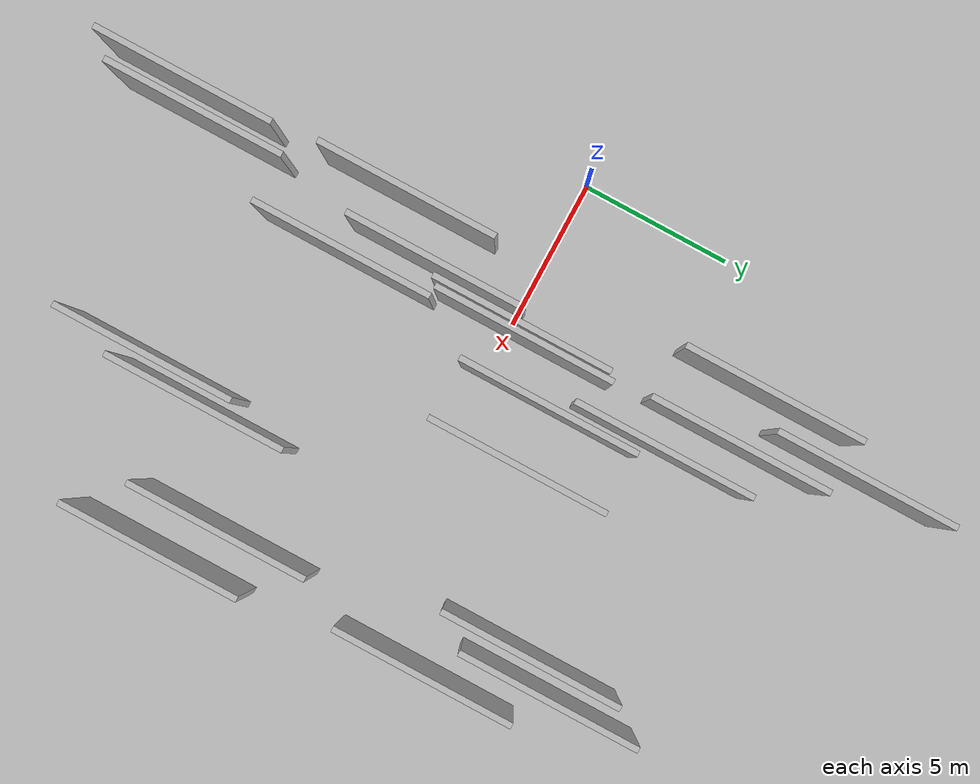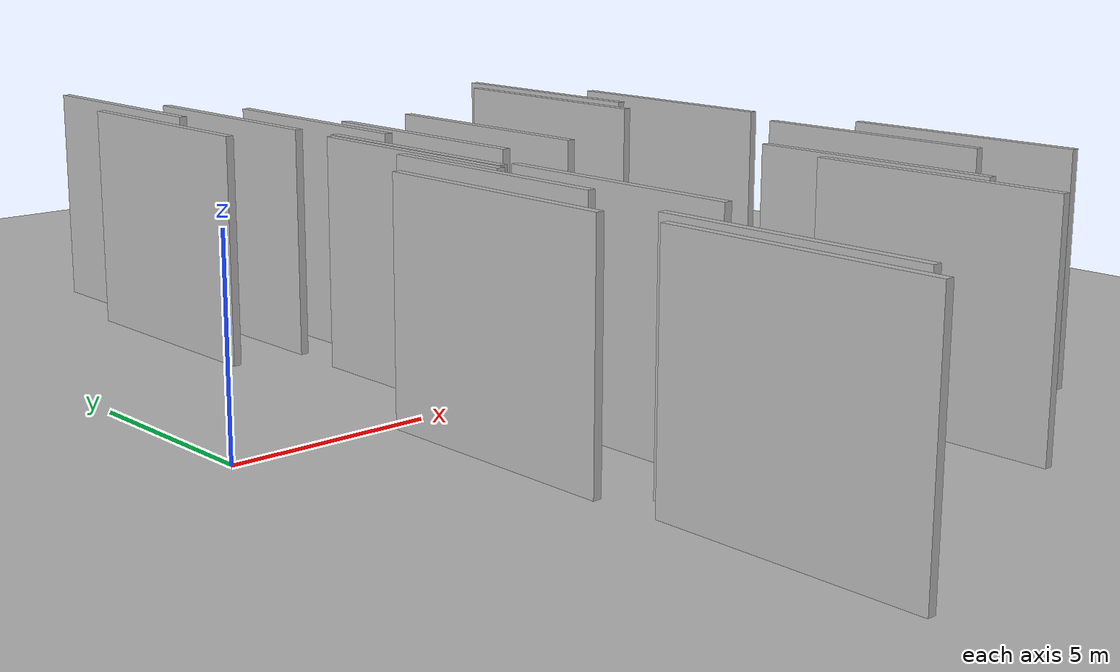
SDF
<?xml version="1.0" encoding="utf-8"?>

<sdf version="1.6">

   <world name="default">

      <gui fullscreen="0">

         <camera name="user_camera">

            <pose>-15 0 4.57585 0 0 0</pose>

            <view_controller>orbit</view_controller>

         </camera>

      </gui>

      <scene>

         <sky>

           <clouds>

             <speed>12</speed>

           </clouds>

         </sky>

         <ambient>0.4 0.4 0.4 1</ambient>

         <background>0.7 0.7 0.7 1</background>

         <shadows>1</shadows>

      </scene>

      <gravity>0 0 -9.8066</gravity>

      <magnetic_field>6e-06 2.3e-05 -4.2e-05</magnetic_field>

      <physics default="0" name="default_physics" type="ode">

         <ode>

            <solver>

               <type>quick</type>

               <iters>10</iters>

               <sor>1.0</sor>

               <use_dynamic_moi_rescaling>0</use_dynamic_moi_rescaling>

            </solver>

            <constraints>

               <cfm>0</cfm>

               <erp>0.2</erp>

               <contact_max_correcting_vel>100</contact_max_correcting_vel>

               <contact_surface_layer>0.001</contact_surface_layer>

            </constraints>

         </ode>

         <max_step_size>0.004</max_step_size>

         <real_time_factor>1</real_time_factor>

         <real_time_update_rate>250</real_time_update_rate>

      </physics>

      <light name="sun" type="directional">

         <cast_shadows>1</cast_shadows>

         <pose>0 0 10 0 0 0</pose>

         <diffuse>0.8 0.8 0.8 1</diffuse>

         <specular>0.2 0.2 0.2 1</specular>

         <attenuation>

            <range>1000</range>

            <constant>0.9</constant>

            <linear>0.01</linear>

            <quadratic>0.001</quadratic>

         </attenuation>

         <direction>-0.5 0.1 -0.9</direction>

      </light>

      <include>

         <name>ground_plane_1</name>

         <uri>model://HANNAS_ground_plane</uri>

         <pose>0 0 0  0 0 0</pose>

      </include>

      <include>

         <name>ground_plane_2</name>

         <uri>model://HANNAS_ground_plane</uri>

         <pose>100 0 0  0 0 0</pose>

      </include>

      <model name="HANNAS_wall_1">

         <static>1</static>

         <pose frame="">15.6665 2.7397 0.0 0.000000 0.000000 1.570796</pose>

         <link name="link">

            <pose frame="">0 0 3.00 0 0 0</pose>

            <collision name="collision">

               <geometry>

                  <box>

                     <size>6.00 0.2 6.00</size>

                  </box>

               </geometry>

               <max_contacts>10</max_contacts>

               <surface>

                  <contact>

                     <ode/>

                  </contact>

                  <bounce/>

                  <friction>

                     <torsional>

                        <ode/>

                     </torsional>

                     <ode/>

                  </friction>

               </surface>

            </collision>

            <visual name="visual">

               <cast_shadows>0</cast_shadows>

               <geometry>

                  <box>

                     <size>6.00 0.2 6.00</size>

                  </box>

               </geometry>

               <material>

                  <script>

                     <uri>model://HANNAS_wall/materials/scripts</uri>

                     <uri>model://HANNAS_wall/materials/textures</uri>

                     <name>vrc/HANNAS_wall</name>

                  </script>

               </material>

            </visual>

            <self_collide>0</self_collide>

            <enable_wind>0</enable_wind>

            <kinematic>0</kinematic>

         </link>

      </model>

      <model name="HANNAS_wall_2">

         <static>1</static>

         <pose frame="">3.2226 -4.5265 0.0 0.000000 0.000000 1.570796</pose>

         <link name="link">

            <pose frame="">0 0 3.00 0 0 0</pose>

            <collision name="collision">

               <geometry>

                  <box>

                     <size>6.00 0.2 6.00</size>

                  </box>

               </geometry>

               <max_contacts>10</max_contacts>

               <surface>

                  <contact>

                     <ode/>

                  </contact>

                  <bounce/>

                  <friction>

                     <torsional>

                        <ode/>

                     </torsional>

                     <ode/>

                  </friction>

               </surface>

            </collision>

            <visual name="visual">

               <cast_shadows>0</cast_shadows>

               <geometry>

                  <box>

                     <size>6.00 0.2 6.00</size>

                  </box>

               </geometry>

               <material>

                  <script>

                     <uri>model://HANNAS_wall/materials/scripts</uri>

                     <uri>model://HANNAS_wall/materials/textures</uri>

                     <name>vrc/HANNAS_wall</name>

                  </script>

               </material>

            </visual>

            <self_collide>0</self_collide>

            <enable_wind>0</enable_wind>

            <kinematic>0</kinematic>

         </link>

      </model>

      <model name="HANNAS_wall_3">

         <static>1</static>

         <pose frame="">5.6988 -5.3888 0.0 0.000000 0.000000 1.570796</pose>

         <link name="link">

            <pose frame="">0 0 3.00 0 0 0</pose>

            <collision name="collision">

               <geometry>

                  <box>

                     <size>6.00 0.2 6.00</size>

                  </box>

               </geometry>

               <max_contacts>10</max_contacts>

               <surface>

                  <contact>

                     <ode/>

                  </contact>

                  <bounce/>

                  <friction>

                     <torsional>

                        <ode/>

                     </torsional>

                     <ode/>

                  </friction>

               </surface>

            </collision>

            <visual name="visual">

               <cast_shadows>0</cast_shadows>

               <geometry>

                  <box>

                     <size>6.00 0.2 6.00</size>

                  </box>

               </geometry>

               <material>

                  <script>

                     <uri>model://HANNAS_wall/materials/scripts</uri>

                     <uri>model://HANNAS_wall/materials/textures</uri>

                     <name>vrc/HANNAS_wall</name>

                  </script>

               </material>

            </visual>

            <self_collide>0</self_collide>

            <enable_wind>0</enable_wind>

            <kinematic>0</kinematic>

         </link>

      </model>

      <model name="HANNAS_wall_4">

         <static>1</static>

         <pose frame="">3.3739 7.9354 0.0 0.000000 0.000000 1.570796</pose>

         <link name="link">

            <pose frame="">0 0 3.00 0 0 0</pose>

            <collision name="collision">

               <geometry>

                  <box>

                     <size>6.00 0.2 6.00</size>

                  </box>

               </geometry>

               <max_contacts>10</max_contacts>

               <surface>

                  <contact>

                     <ode/>

                  </contact>

                  <bounce/>

                  <friction>

                     <torsional>

                        <ode/>

                     </torsional>

                     <ode/>

                  </friction>

               </surface>

            </collision>

            <visual name="visual">

               <cast_shadows>0</cast_shadows>

               <geometry>

                  <box>

                     <size>6.00 0.2 6.00</size>

                  </box>

               </geometry>

               <material>

                  <script>

                     <uri>model://HANNAS_wall/materials/scripts</uri>

                     <uri>model://HANNAS_wall/materials/textures</uri>

                     <name>vrc/HANNAS_wall</name>

                  </script>

               </material>

            </visual>

            <self_collide>0</self_collide>

            <enable_wind>0</enable_wind>

            <kinematic>0</kinematic>

         </link>

      </model>

      <model name="HANNAS_wall_5">

         <static>1</static>

         <pose frame="">13.6999 5.3078 0.0 0.000000 0.000000 1.570796</pose>

         <link name="link">

            <pose frame="">0 0 3.00 0 0 0</pose>

            <collision name="collision">

               <geometry>

                  <box>

                     <size>6.00 0.2 6.00</size>

                  </box>

               </geometry>

               <max_contacts>10</max_contacts>

               <surface>

                  <contact>

                     <ode/>

                  </contact>

                  <bounce/>

                  <friction>

                     <torsional>

                        <ode/>

                     </torsional>

                     <ode/>

                  </friction>

               </surface>

            </collision>

            <visual name="visual">

               <cast_shadows>0</cast_shadows>

               <geometry>

                  <box>

                     <size>6.00 0.2 6.00</size>

                  </box>

               </geometry>

               <material>

                  <script>

                     <uri>model://HANNAS_wall/materials/scripts</uri>

                     <uri>model://HANNAS_wall/materials/textures</uri>

                     <name>vrc/HANNAS_wall</name>

                  </script>

               </material>

            </visual>

            <self_collide>0</self_collide>

            <enable_wind>0</enable_wind>

            <kinematic>0</kinematic>

         </link>

      </model>

      <model name="HANNAS_wall_6">

         <static>1</static>

         <pose frame="">14.5180 6.3491 0.0 0.000000 0.000000 1.570796</pose>

         <link name="link">

            <pose frame="">0 0 3.00 0 0 0</pose>

            <collision name="collision">

               <geometry>

                  <box>

                     <size>6.00 0.2 6.00</size>

                  </box>

               </geometry>

               <max_contacts>10</max_contacts>

               <surface>

                  <contact>

                     <ode/>

                  </contact>

                  <bounce/>

                  <friction>

                     <torsional>

                        <ode/>

                     </torsional>

                     <ode/>

                  </friction>

               </surface>

            </collision>

            <visual name="visual">

               <cast_shadows>0</cast_shadows>

               <geometry>

                  <box>

                     <size>6.00 0.2 6.00</size>

                  </box>

               </geometry>

               <material>

                  <script>

                     <uri>model://HANNAS_wall/materials/scripts</uri>

                     <uri>model://HANNAS_wall/materials/textures</uri>

                     <name>vrc/HANNAS_wall</name>

                  </script>

               </material>

            </visual>

            <self_collide>0</self_collide>

            <enable_wind>0</enable_wind>

            <kinematic>0</kinematic>

         </link>

      </model>

      <model name="HANNAS_wall_7">

         <static>1</static>

         <pose frame="">4.6879 -2.7760 0.0 0.000000 0.000000 1.570796</pose>

         <link name="link">

            <pose frame="">0 0 3.00 0 0 0</pose>

            <collision name="collision">

               <geometry>

                  <box>

                     <size>6.00 0.2 6.00</size>

                  </box>

               </geometry>

               <max_contacts>10</max_contacts>

               <surface>

                  <contact>

                     <ode/>

                  </contact>

                  <bounce/>

                  <friction>

                     <torsional>

                        <ode/>

                     </torsional>

                     <ode/>

                  </friction>

               </surface>

            </collision>

            <visual name="visual">

               <cast_shadows>0</cast_shadows>

               <geometry>

                  <box>

                     <size>6.00 0.2 6.00</size>

                  </box>

               </geometry>

               <material>

                  <script>

                     <uri>model://HANNAS_wall/materials/scripts</uri>

                     <uri>model://HANNAS_wall/materials/textures</uri>

                     <name>vrc/HANNAS_wall</name>

                  </script>

               </material>

            </visual>

            <self_collide>0</self_collide>

            <enable_wind>0</enable_wind>

            <kinematic>0</kinematic>

         </link>

      </model>

      <model name="HANNAS_wall_8">

         <static>1</static>

         <pose frame="">3.3909 -11.9687 0.0 0.000000 0.000000 1.570796</pose>

         <link name="link">

            <pose frame="">0 0 3.00 0 0 0</pose>

            <collision name="collision">

               <geometry>

                  <box>

                     <size>6.00 0.2 6.00</size>

                  </box>

               </geometry>

               <max_contacts>10</max_contacts>

               <surface>

                  <contact>

                     <ode/>

                  </contact>

                  <bounce/>

                  <friction>

                     <torsional>

                        <ode/>

                     </torsional>

                     <ode/>

                  </friction>

               </surface>

            </collision>

            <visual name="visual">

               <cast_shadows>0</cast_shadows>

               <geometry>

                  <box>

                     <size>6.00 0.2 6.00</size>

                  </box>

               </geometry>

               <material>

                  <script>

                     <uri>model://HANNAS_wall/materials/scripts</uri>

                     <uri>model://HANNAS_wall/materials/textures</uri>

                     <name>vrc/HANNAS_wall</name>

                  </script>

               </material>

            </visual>

            <self_collide>0</self_collide>

            <enable_wind>0</enable_wind>

            <kinematic>0</kinematic>

         </link>

      </model>

      <model name="HANNAS_wall_9">

         <static>1</static>

         <pose frame="">5.1061 0.3719 0.0 0.000000 0.000000 1.570796</pose>

         <link name="link">

            <pose frame="">0 0 3.00 0 0 0</pose>

            <collision name="collision">

               <geometry>

                  <box>

                     <size>6.00 0.2 6.00</size>

                  </box>

               </geometry>

               <max_contacts>10</max_contacts>

               <surface>

                  <contact>

                     <ode/>

                  </contact>

                  <bounce/>

                  <friction>

                     <torsional>

                        <ode/>

                     </torsional>

                     <ode/>

                  </friction>

               </surface>

            </collision>

            <visual name="visual">

               <cast_shadows>0</cast_shadows>

               <geometry>

                  <box>

                     <size>6.00 0.2 6.00</size>

                  </box>

               </geometry>

               <material>

                  <script>

                     <uri>model://HANNAS_wall/materials/scripts</uri>

                     <uri>model://HANNAS_wall/materials/textures</uri>

                     <name>vrc/HANNAS_wall</name>

                  </script>

               </material>

            </visual>

            <self_collide>0</self_collide>

            <enable_wind>0</enable_wind>

            <kinematic>0</kinematic>

         </link>

      </model>

      <model name="HANNAS_wall_10">

         <static>1</static>

         <pose frame="">8.8644 2.2515 0.0 0.000000 0.000000 1.570796</pose>

         <link name="link">

            <pose frame="">0 0 3.00 0 0 0</pose>

            <collision name="collision">

               <geometry>

                  <box>

                     <size>6.00 0.2 6.00</size>

                  </box>

               </geometry>

               <max_contacts>10</max_contacts>

               <surface>

                  <contact>

                     <ode/>

                  </contact>

                  <bounce/>

                  <friction>

                     <torsional>

                        <ode/>

                     </torsional>

                     <ode/>

                  </friction>

               </surface>

            </collision>

            <visual name="visual">

               <cast_shadows>0</cast_shadows>

               <geometry>

                  <box>

                     <size>6.00 0.2 6.00</size>

                  </box>

               </geometry>

               <material>

                  <script>

                     <uri>model://HANNAS_wall/materials/scripts</uri>

                     <uri>model://HANNAS_wall/materials/textures</uri>

                     <name>vrc/HANNAS_wall</name>

                  </script>

               </material>

            </visual>

            <self_collide>0</self_collide>

            <enable_wind>0</enable_wind>

            <kinematic>0</kinematic>

         </link>

      </model>

      <model name="HANNAS_wall_11">

         <static>1</static>

         <pose frame="">6.8777 2.2278 0.0 0.000000 0.000000 1.570796</pose>

         <link name="link">

            <pose frame="">0 0 3.00 0 0 0</pose>

            <collision name="collision">

               <geometry>

                  <box>

                     <size>6.00 0.2 6.00</size>

                  </box>

               </geometry>

               <max_contacts>10</max_contacts>

               <surface>

                  <contact>

                     <ode/>

                  </contact>

                  <bounce/>

                  <friction>

                     <torsional>

                        <ode/>

                     </torsional>

                     <ode/>

                  </friction>

               </surface>

            </collision>

            <visual name="visual">

               <cast_shadows>0</cast_shadows>

               <geometry>

                  <box>

                     <size>6.00 0.2 6.00</size>

                  </box>

               </geometry>

               <material>

                  <script>

                     <uri>model://HANNAS_wall/materials/scripts</uri>

                     <uri>model://HANNAS_wall/materials/textures</uri>

                     <name>vrc/HANNAS_wall</name>

                  </script>

               </material>

            </visual>

            <self_collide>0</self_collide>

            <enable_wind>0</enable_wind>

            <kinematic>0</kinematic>

         </link>

      </model>

      <model name="HANNAS_wall_12">

         <static>1</static>

         <pose frame="">11.1920 -9.0818 0.0 0.000000 0.000000 1.570796</pose>

         <link name="link">

            <pose frame="">0 0 3.00 0 0 0</pose>

            <collision name="collision">

               <geometry>

                  <box>

                     <size>6.00 0.2 6.00</size>

                  </box>

               </geometry>

               <max_contacts>10</max_contacts>

               <surface>

                  <contact>

                     <ode/>

                  </contact>

                  <bounce/>

                  <friction>

                     <torsional>

                        <ode/>

                     </torsional>

                     <ode/>

                  </friction>

               </surface>

            </collision>

            <visual name="visual">

               <cast_shadows>0</cast_shadows>

               <geometry>

                  <box>

                     <size>6.00 0.2 6.00</size>

                  </box>

               </geometry>

               <material>

                  <script>

                     <uri>model://HANNAS_wall/materials/scripts</uri>

                     <uri>model://HANNAS_wall/materials/textures</uri>

                     <name>vrc/HANNAS_wall</name>

                  </script>

               </material>

            </visual>

            <self_collide>0</self_collide>

            <enable_wind>0</enable_wind>

            <kinematic>0</kinematic>

         </link>

      </model>

      <model name="HANNAS_wall_13">

         <static>1</static>

         <pose frame="">4.1003 -11.2304 0.0 0.000000 0.000000 1.570796</pose>

         <link name="link">

            <pose frame="">0 0 3.00 0 0 0</pose>

            <collision name="collision">

               <geometry>

                  <box>

                     <size>6.00 0.2 6.00</size>

                  </box>

               </geometry>

               <max_contacts>10</max_contacts>

               <surface>

                  <contact>

                     <ode/>

                  </contact>

                  <bounce/>

                  <friction>

                     <torsional>

                        <ode/>

                     </torsional>

                     <ode/>

                  </friction>

               </surface>

            </collision>

            <visual name="visual">

               <cast_shadows>0</cast_shadows>

               <geometry>

                  <box>

                     <size>6.00 0.2 6.00</size>

                  </box>

               </geometry>

               <material>

                  <script>

                     <uri>model://HANNAS_wall/materials/scripts</uri>

                     <uri>model://HANNAS_wall/materials/textures</uri>

                     <name>vrc/HANNAS_wall</name>

                  </script>

               </material>

            </visual>

            <self_collide>0</self_collide>

            <enable_wind>0</enable_wind>

            <kinematic>0</kinematic>

         </link>

      </model>

      <model name="HANNAS_wall_14">

         <static>1</static>

         <pose frame="">5.3544 0.5801 0.0 0.000000 0.000000 1.570796</pose>

         <link name="link">

            <pose frame="">0 0 3.00 0 0 0</pose>

            <collision name="collision">

               <geometry>

                  <box>

                     <size>6.00 0.2 6.00</size>

                  </box>

               </geometry>

               <max_contacts>10</max_contacts>

               <surface>

                  <contact>

                     <ode/>

                  </contact>

                  <bounce/>

                  <friction>

                     <torsional>

                        <ode/>

                     </torsional>

                     <ode/>

                  </friction>

               </surface>

            </collision>

            <visual name="visual">

               <cast_shadows>0</cast_shadows>

               <geometry>

                  <box>

                     <size>6.00 0.2 6.00</size>

                  </box>

               </geometry>

               <material>

                  <script>

                     <uri>model://HANNAS_wall/materials/scripts</uri>

                     <uri>model://HANNAS_wall/materials/textures</uri>

                     <name>vrc/HANNAS_wall</name>

                  </script>

               </material>

            </visual>

            <self_collide>0</self_collide>

            <enable_wind>0</enable_wind>

            <kinematic>0</kinematic>

         </link>

      </model>

      <model name="HANNAS_wall_15">

         <static>1</static>

         <pose frame="">14.7792 -4.6461 0.0 0.000000 0.000000 1.570796</pose>

         <link name="link">

            <pose frame="">0 0 3.00 0 0 0</pose>

            <collision name="collision">

               <geometry>

                  <box>

                     <size>6.00 0.2 6.00</size>

                  </box>

               </geometry>

               <max_contacts>10</max_contacts>

               <surface>

                  <contact>

                     <ode/>

                  </contact>

                  <bounce/>

                  <friction>

                     <torsional>

                        <ode/>

                     </torsional>

                     <ode/>

                  </friction>

               </surface>

            </collision>

            <visual name="visual">

               <cast_shadows>0</cast_shadows>

               <geometry>

                  <box>

                     <size>6.00 0.2 6.00</size>

                  </box>

               </geometry>

               <material>

                  <script>

                     <uri>model://HANNAS_wall/materials/scripts</uri>

                     <uri>model://HANNAS_wall/materials/textures</uri>

                     <name>vrc/HANNAS_wall</name>

                  </script>

               </material>

            </visual>

            <self_collide>0</self_collide>

            <enable_wind>0</enable_wind>

            <kinematic>0</kinematic>

         </link>

      </model>

      <model name="HANNAS_wall_16">

         <static>1</static>

         <pose frame="">16.2441 -6.1256 0.0 0.000000 0.000000 1.570796</pose>

         <link name="link">

            <pose frame="">0 0 3.00 0 0 0</pose>

            <collision name="collision">

               <geometry>

                  <box>

                     <size>6.00 0.2 6.00</size>

                  </box>

               </geometry>

               <max_contacts>10</max_contacts>

               <surface>

                  <contact>

                     <ode/>

                  </contact>

                  <bounce/>

                  <friction>

                     <torsional>

                        <ode/>

                     </torsional>

                     <ode/>

                  </friction>

               </surface>

            </collision>

            <visual name="visual">

               <cast_shadows>0</cast_shadows>

               <geometry>

                  <box>

                     <size>6.00 0.2 6.00</size>

                  </box>

               </geometry>

               <material>

                  <script>

                     <uri>model://HANNAS_wall/materials/scripts</uri>

                     <uri>model://HANNAS_wall/materials/textures</uri>

                     <name>vrc/HANNAS_wall</name>

                  </script>

               </material>

            </visual>

            <self_collide>0</self_collide>

            <enable_wind>0</enable_wind>

            <kinematic>0</kinematic>

         </link>

      </model>

      <model name="HANNAS_wall_17">

         <static>1</static>

         <pose frame="">11.7557 -7.0398 0.0 0.000000 0.000000 1.570796</pose>

         <link name="link">

            <pose frame="">0 0 3.00 0 0 0</pose>

            <collision name="collision">

               <geometry>

                  <box>

                     <size>6.00 0.2 6.00</size>

                  </box>

               </geometry>

               <max_contacts>10</max_contacts>

               <surface>

                  <contact>

                     <ode/>

                  </contact>

                  <bounce/>

                  <friction>

                     <torsional>

                        <ode/>

                     </torsional>

                     <ode/>

                  </friction>

               </surface>

            </collision>

            <visual name="visual">

               <cast_shadows>0</cast_shadows>

               <geometry>

                  <box>

                     <size>6.00 0.2 6.00</size>

                  </box>

               </geometry>

               <material>

                  <script>

                     <uri>model://HANNAS_wall/materials/scripts</uri>

                     <uri>model://HANNAS_wall/materials/textures</uri>

                     <name>vrc/HANNAS_wall</name>

                  </script>

               </material>

            </visual>

            <self_collide>0</self_collide>

            <enable_wind>0</enable_wind>

            <kinematic>0</kinematic>

         </link>

      </model>

      <model name="HANNAS_wall_18">

         <static>1</static>

         <pose frame="">6.3844 5.8419 0.0 0.000000 0.000000 1.570796</pose>

         <link name="link">

            <pose frame="">0 0 3.00 0 0 0</pose>

            <collision name="collision">

               <geometry>

                  <box>

                     <size>6.00 0.2 6.00</size>

                  </box>

               </geometry>

               <max_contacts>10</max_contacts>

               <surface>

                  <contact>

                     <ode/>

                  </contact>

                  <bounce/>

                  <friction>

                     <torsional>

                        <ode/>

                     </torsional>

                     <ode/>

                  </friction>

               </surface>

            </collision>

            <visual name="visual">

               <cast_shadows>0</cast_shadows>

               <geometry>

                  <box>

                     <size>6.00 0.2 6.00</size>

                  </box>

               </geometry>

               <material>

                  <script>

                     <uri>model://HANNAS_wall/materials/scripts</uri>

                     <uri>model://HANNAS_wall/materials/textures</uri>

                     <name>vrc/HANNAS_wall</name>

                  </script>

               </material>

            </visual>

            <self_collide>0</self_collide>

            <enable_wind>0</enable_wind>

            <kinematic>0</kinematic>

         </link>

      </model>

      <model name="HANNAS_wall_19">

         <static>1</static>

         <pose frame="">5.1841 7.7561 0.0 0.000000 0.000000 1.570796</pose>

         <link name="link">

            <pose frame="">0 0 3.00 0 0 0</pose>

            <collision name="collision">

               <geometry>

                  <box>

                     <size>6.00 0.2 6.00</size>

                  </box>

               </geometry>

               <max_contacts>10</max_contacts>

               <surface>

                  <contact>

                     <ode/>

                  </contact>

                  <bounce/>

                  <friction>

                     <torsional>

                        <ode/>

                     </torsional>

                     <ode/>

                  </friction>

               </surface>

            </collision>

            <visual name="visual">

               <cast_shadows>0</cast_shadows>

               <geometry>

                  <box>

                     <size>6.00 0.2 6.00</size>

                  </box>

               </geometry>

               <material>

                  <script>

                     <uri>model://HANNAS_wall/materials/scripts</uri>

                     <uri>model://HANNAS_wall/materials/textures</uri>

                     <name>vrc/HANNAS_wall</name>

                  </script>

               </material>

            </visual>

            <self_collide>0</self_collide>

            <enable_wind>0</enable_wind>

            <kinematic>0</kinematic>

         </link>

      </model>

      <model name="HANNAS_wall_20">

         <static>1</static>

         <pose frame="">4.3158 11.5151 0.0 0.000000 0.000000 1.570796</pose>

         <link name="link">

            <pose frame="">0 0 3.00 0 0 0</pose>

            <collision name="collision">

               <geometry>

                  <box>

                     <size>6.00 0.2 6.00</size>

                  </box>

               </geometry>

               <max_contacts>10</max_contacts>

               <surface>

                  <contact>

                     <ode/>

                  </contact>

                  <bounce/>

                  <friction>

                     <torsional>

                        <ode/>

                     </torsional>

                     <ode/>

                  </friction>

               </surface>

            </collision>

            <visual name="visual">

               <cast_shadows>0</cast_shadows>

               <geometry>

                  <box>

                     <size>6.00 0.2 6.00</size>

                  </box>

               </geometry>

               <material>

                  <script>

                     <uri>model://HANNAS_wall/materials/scripts</uri>

                     <uri>model://HANNAS_wall/materials/textures</uri>

                     <name>vrc/HANNAS_wall</name>

                  </script>

               </material>

            </visual>

            <self_collide>0</self_collide>

            <enable_wind>0</enable_wind>

            <kinematic>0</kinematic>

         </link>

      </model>

   </world>

</sdf>

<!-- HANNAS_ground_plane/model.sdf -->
<sdf version="1.4">
<model name="HANNAS_ground_plane">
  <static>true</static>
    <link name="link">
      <collision name="collision">
        <geometry>
          <plane>
            <normal>0 0 1</normal>
            <size>1000 1000</size>
          </plane>
        </geometry>
        <surface>
          <friction>
            <ode>
              <mu>100</mu>
              <mu2>50</mu2>
            </ode>
          </friction>
        </surface>
      </collision>
      <visual name="visual">
        <cast_shadows>false</cast_shadows>
        <geometry>
          <plane>
            <normal>0 0 1</normal>
            <size>1000 1000</size>
          </plane>
        </geometry>
        <material>
          <script>
            <uri>model://HANNAS_ground_plane/materials/scripts/HANNAS_ground_plane.material</uri>
	    <uri>model://HANNAS_ground_plane/materials/textures</uri>
            <name>HANNASGroundPlane/Image</name>
          </script>
        </material>
      </visual>
    </link>
  </model>
</sdf>
